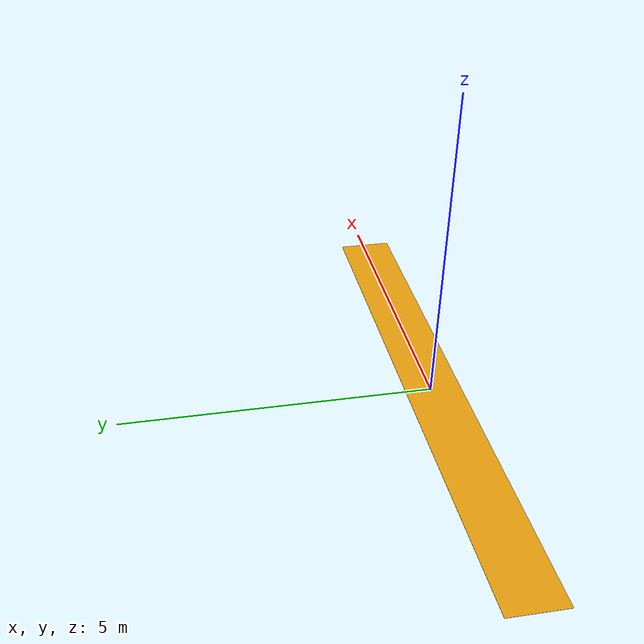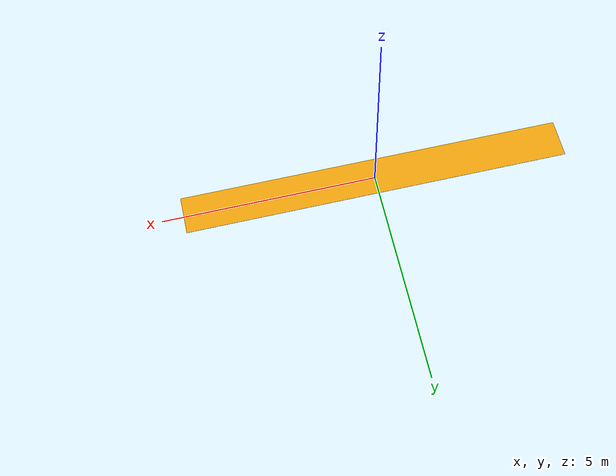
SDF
<?xml version="1.0"?>
<sdf version="1.10">
  <model name="vision_station">
    <static>true</static>

    <!--
      The field covers the extended 18x4 roller matrix.
      Its top-left image corner maps to world (-4.50, +0.45).
    -->
    <link name="calibration_field">
      <pose>0 0 0.071 0 0 0</pose>
      <visual name="calibration_field_visual">
        <geometry>
          <box>
            <size>9.00 0.90 0.004</size>
          </box>
        </geometry>
        <material>
          <ambient>0.95 0.65 0.05 1</ambient>
          <diffuse>0.95 0.65 0.05 1</diffuse>
          <specular>0.05 0.05 0.05 1</specular>
        </material>
      </visual>
    </link>

    <link name="camera_link">
      <!-- Camera optical +X points down. Image right follows world +X. -->
      <pose>0 0 6.0 0 1.57079632679 1.57079632679</pose>
      <sensor name="overhead_camera" type="camera">
        <always_on>true</always_on>
        <update_rate>15</update_rate>
        <topic>/singulator/camera/image_raw</topic>
        <camera>
          <horizontal_fov>1.35</horizontal_fov>
          <image>
            <width>1600</width>
            <height>300</height>
            <format>R8G8B8</format>
          </image>
          <clip>
            <near>0.10</near>
            <far>20.0</far>
          </clip>
        </camera>
        <visualize>true</visualize>
      </sensor>
    </link>
  </model>
</sdf>
